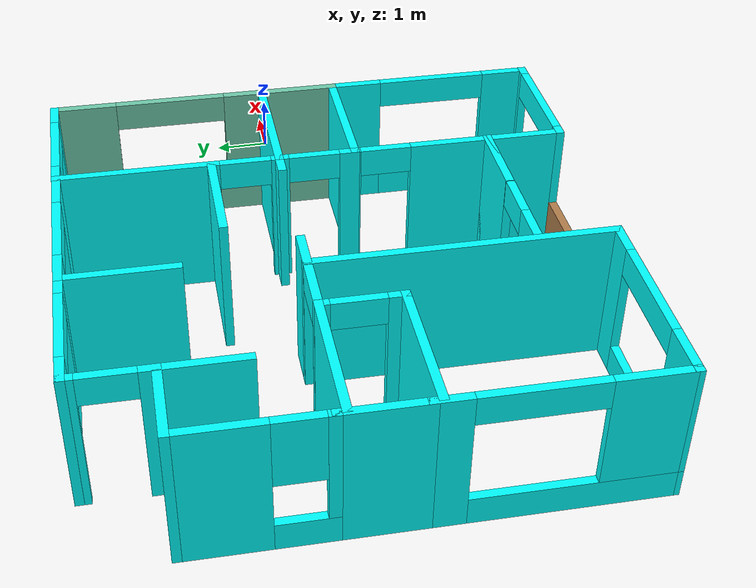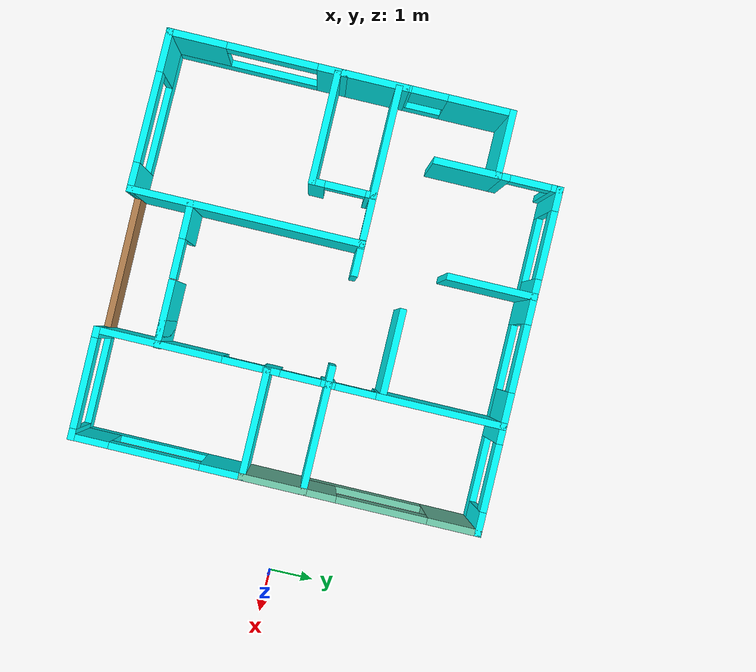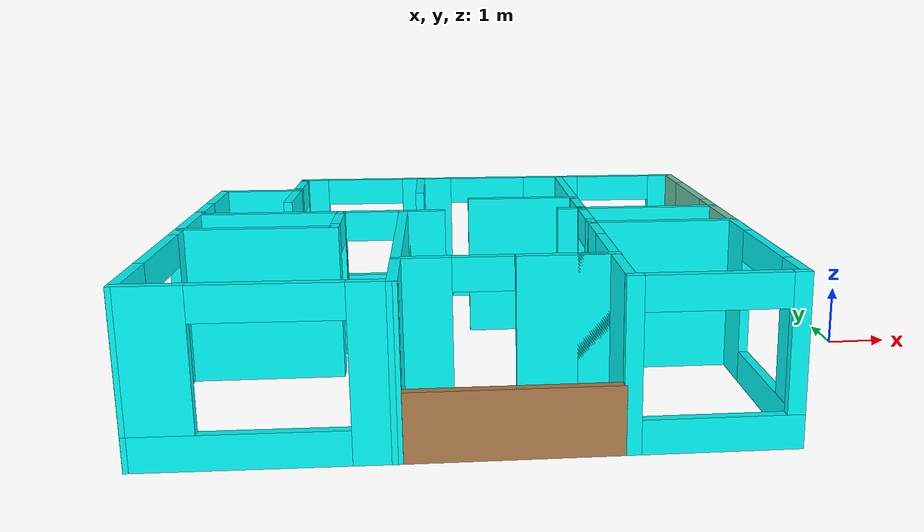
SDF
<?xml version='1.0'?>
<sdf version='1.6'>
  <model name='Building'>
    <pose frame=''>-6.64793 -0.330614 0 0 -0 0</pose>
    <link name='Wall_101'>
      <collision name='Wall_101_Collision'>
        <geometry>
          <box>
            <size>2.5 0.15 2.5</size>
          </box>
        </geometry>
        <pose frame=''>0 0 1.25 0 -0 0</pose>
      </collision>
      <visual name='Wall_101_Visual'>
        <pose frame=''>0 0 1.25 0 -0 0</pose>
        <geometry>
          <box>
            <size>2.5 0.15 2.5</size>
          </box>
        </geometry>
        <material>
          <script>
            <uri>file://media/materials/scripts/gazebo.material</uri>
            <name>Gazebo/Grey</name>
          </script>
          <ambient>0 1 1 1</ambient>
        </material>
        <meta>
          <layer>0</layer>
        </meta>
      </visual>
      <pose frame=''>-3.22857 0.625381 0 0 -0 3.14159</pose>
    </link>
    <link name='Wall_103'>
      <pose frame=''>-1.5069 0.625381 0 0 -0 0</pose>
      <visual name='Wall_103_Visual_0'>
        <pose frame=''>-0.545502 0 1.25 0 -0 0</pose>
        <geometry>
          <box>
            <size>0.152336 0.15 2.5</size>
          </box>
        </geometry>
        <material>
          <script>
            <uri>file://media/materials/scripts/gazebo.material</uri>
            <name>Gazebo/Grey</name>
          </script>
          <ambient>0 1 1 1</ambient>
        </material>
        <meta>
          <layer>0</layer>
        </meta>
      </visual>
      <collision name='Wall_103_Collision_0'>
        <geometry>
          <box>
            <size>0.152336 0.15 2.5</size>
          </box>
        </geometry>
        <pose frame=''>-0.545502 0 1.25 0 -0 0</pose>
      </collision>
      <visual name='Wall_103_Visual_1'>
        <pose frame=''>0.526168 0 1.25 0 -0 0</pose>
        <geometry>
          <box>
            <size>0.191004 0.15 2.5</size>
          </box>
        </geometry>
        <material>
          <script>
            <uri>file://media/materials/scripts/gazebo.material</uri>
            <name>Gazebo/Grey</name>
          </script>
          <ambient>0 1 1 1</ambient>
        </material>
        <meta>
          <layer>0</layer>
        </meta>
      </visual>
      <collision name='Wall_103_Collision_1'>
        <geometry>
          <box>
            <size>0.191004 0.15 2.5</size>
          </box>
        </geometry>
        <pose frame=''>0.526168 0 1.25 0 -0 0</pose>
      </collision>
      <visual name='Wall_103_Visual_2'>
        <pose frame=''>-0.019334 0 2.25 0 -0 0</pose>
        <geometry>
          <box>
            <size>0.9 0.15 0.5</size>
          </box>
        </geometry>
        <material>
          <script>
            <uri>file://media/materials/scripts/gazebo.material</uri>
            <name>Gazebo/Grey</name>
          </script>
          <ambient>0 1 1 1</ambient>
        </material>
        <meta>
          <layer>0</layer>
        </meta>
      </visual>
      <collision name='Wall_103_Collision_2'>
        <geometry>
          <box>
            <size>0.9 0.15 0.5</size>
          </box>
        </geometry>
        <pose frame=''>-0.019334 0 2.25 0 -0 0</pose>
      </collision>
    </link>
    <link name='Wall_105'>
      <collision name='Wall_105_Collision'>
        <geometry>
          <box>
            <size>0.75666 0.15 2.5</size>
          </box>
        </geometry>
        <pose frame=''>0 0 1.25 0 -0 0</pose>
      </collision>
      <visual name='Wall_105_Visual'>
        <pose frame=''>0 0 1.25 0 -0 0</pose>
        <geometry>
          <box>
            <size>0.75666 0.15 2.5</size>
          </box>
        </geometry>
        <material>
          <script>
            <uri>file://media/materials/scripts/gazebo.material</uri>
            <name>Gazebo/Grey</name>
          </script>
          <ambient>0 1 1 1</ambient>
        </material>
        <meta>
          <layer>0</layer>
        </meta>
      </visual>
      <pose frame=''>-0.656896 0.625381 0 0 -0 0</pose>
    </link>
    <link name='Wall_108'>
      <collision name='Wall_108_Collision'>
        <geometry>
          <box>
            <size>5.25 0.15 2.5</size>
          </box>
        </geometry>
        <pose frame=''>0 0 1.25 0 -0 0</pose>
      </collision>
      <visual name='Wall_108_Visual'>
        <pose frame=''>0 0 1.25 0 -0 0</pose>
        <geometry>
          <box>
            <size>5.25 0.15 2.5</size>
          </box>
        </geometry>
        <material>
          <script>
            <uri>file://media/materials/scripts/gazebo.material</uri>
            <name>Gazebo/Grey</name>
          </script>
          <ambient>0 1 1 1</ambient>
        </material>
        <meta>
          <layer>0</layer>
        </meta>
      </visual>
      <pose frame=''>-0.990859 -1.9245 0 0 0 -1.57088</pose>
    </link>
    <link name='Wall_112'>
      <pose frame=''>2.10727 -2.52462 0 0 0 -1.5708</pose>
      <visual name='Wall_112_Visual_0'>
        <pose frame=''>-1.78805 0 1.25 0 -0 0</pose>
        <geometry>
          <box>
            <size>0.173908 0.15 2.5</size>
          </box>
        </geometry>
        <material>
          <script>
            <uri>file://media/materials/scripts/gazebo.material</uri>
            <name>Gazebo/Grey</name>
          </script>
          <ambient>0 1 1 1</ambient>
        </material>
        <meta>
          <layer>0</layer>
        </meta>
      </visual>
      <collision name='Wall_112_Collision_0'>
        <geometry>
          <box>
            <size>0.173908 0.15 2.5</size>
          </box>
        </geometry>
        <pose frame=''>-1.78805 0 1.25 0 -0 0</pose>
      </collision>
      <visual name='Wall_112_Visual_1'>
        <pose frame=''>0.536954 0 1.25 0 -0 0</pose>
        <geometry>
          <box>
            <size>2.67609 0.15 2.5</size>
          </box>
        </geometry>
        <material>
          <script>
            <uri>file://media/materials/scripts/gazebo.material</uri>
            <name>Gazebo/Grey</name>
          </script>
          <ambient>0 1 1 1</ambient>
        </material>
        <meta>
          <layer>0</layer>
        </meta>
      </visual>
      <collision name='Wall_112_Collision_1'>
        <geometry>
          <box>
            <size>2.67609 0.15 2.5</size>
          </box>
        </geometry>
        <pose frame=''>0.536954 0 1.25 0 -0 0</pose>
      </collision>
      <visual name='Wall_112_Visual_2'>
        <pose frame=''>-1.25109 0 2.25 0 -0 0</pose>
        <geometry>
          <box>
            <size>0.9 0.15 0.5</size>
          </box>
        </geometry>
        <material>
          <script>
            <uri>file://media/materials/scripts/gazebo.material</uri>
            <name>Gazebo/Grey</name>
          </script>
          <ambient>0 1 1 1</ambient>
        </material>
        <meta>
          <layer>0</layer>
        </meta>
      </visual>
      <collision name='Wall_112_Collision_2'>
        <geometry>
          <box>
            <size>0.9 0.15 0.5</size>
          </box>
        </geometry>
        <pose frame=''>-1.25109 0 2.25 0 -0 0</pose>
      </collision>
    </link>
    <link name='Wall_114'>
      <pose frame=''>0.571285 -3.1442 0 0 -0 0</pose>
      <visual name='Wall_114_Visual_0'>
        <pose frame=''>-1.20415 0 1.25 0 -0 0</pose>
        <geometry>
          <box>
            <size>0.8417 0.15 2.5</size>
          </box>
        </geometry>
        <material>
          <script>
            <uri>file://media/materials/scripts/gazebo.material</uri>
            <name>Gazebo/Grey</name>
          </script>
          <ambient>0 1 1 1</ambient>
        </material>
        <meta>
          <layer>0</layer>
        </meta>
      </visual>
      <collision name='Wall_114_Collision_0'>
        <geometry>
          <box>
            <size>0.8417 0.15 2.5</size>
          </box>
        </geometry>
        <pose frame=''>-1.20415 0 1.25 0 -0 0</pose>
      </collision>
      <visual name='Wall_114_Visual_1'>
        <pose frame=''>0.87085 0 1.25 0 -0 0</pose>
        <geometry>
          <box>
            <size>1.5083 0.15 2.5</size>
          </box>
        </geometry>
        <material>
          <script>
            <uri>file://media/materials/scripts/gazebo.material</uri>
            <name>Gazebo/Grey</name>
          </script>
          <ambient>0 1 1 1</ambient>
        </material>
        <meta>
          <layer>0</layer>
        </meta>
      </visual>
      <collision name='Wall_114_Collision_1'>
        <geometry>
          <box>
            <size>1.5083 0.15 2.5</size>
          </box>
        </geometry>
        <pose frame=''>0.87085 0 1.25 0 -0 0</pose>
      </collision>
      <visual name='Wall_114_Visual_2'>
        <pose frame=''>1.3119 0 1.25 0 -0 0</pose>
        <geometry>
          <box>
            <size>0.626192 0.15 2.5</size>
          </box>
        </geometry>
        <material>
          <script>
            <uri>file://media/materials/scripts/gazebo.material</uri>
            <name>Gazebo/Grey</name>
          </script>
          <ambient>0 1 1 1</ambient>
        </material>
        <meta>
          <layer>0</layer>
        </meta>
      </visual>
      <collision name='Wall_114_Collision_2'>
        <geometry>
          <box>
            <size>0.626192 0.15 2.5</size>
          </box>
        </geometry>
        <pose frame=''>1.3119 0 1.25 0 -0 0</pose>
      </collision>
      <visual name='Wall_114_Visual_3'>
        <pose frame=''>-0.342246 0 2.25 0 -0 0</pose>
        <geometry>
          <box>
            <size>0.882108 0.15 0.5</size>
          </box>
        </geometry>
        <material>
          <script>
            <uri>file://media/materials/scripts/gazebo.material</uri>
            <name>Gazebo/Grey</name>
          </script>
          <ambient>0 1 1 1</ambient>
        </material>
        <meta>
          <layer>0</layer>
        </meta>
      </visual>
      <collision name='Wall_114_Collision_3'>
        <geometry>
          <box>
            <size>0.882108 0.15 0.5</size>
          </box>
        </geometry>
        <pose frame=''>-0.342246 0 2.25 0 -0 0</pose>
      </collision>
    </link>
    <link name='Wall_118'>
      <collision name='Wall_118_Collision'>
        <geometry>
          <box>
            <size>3.25 0.15 1</size>
          </box>
        </geometry>
        <pose frame=''>0 0 0.5 0 -0 0</pose>
      </collision>
      <visual name='Wall_118_Visual'>
        <pose frame=''>0 0 0.5 0 -0 0</pose>
        <geometry>
          <box>
            <size>3.25 0.15 1</size>
          </box>
        </geometry>
        <material>
          <script>
            <uri>file://media/materials/scripts/gazebo.material</uri>
            <name>Gazebo/Wood</name>
          </script>
          <ambient>0 1 1 1</ambient>
        </material>
        <meta>
          <layer>0</layer>
        </meta>
      </visual>
      <pose frame=''>0.558926 -4.47438 0 0 -0 0</pose>
    </link>
    <link name='Wall_119'>
      <pose frame=''>3.28414 -4.4745 0 0 0 -9.9e-05</pose>
      <visual name='Wall_119_Visual_0'>
        <pose frame=''>-1.1272 0 1.25 0 -0 0</pose>
        <geometry>
          <box>
            <size>0.245591 0.15 2.5</size>
          </box>
        </geometry>
        <material>
          <script>
            <uri>file://media/materials/scripts/gazebo.material</uri>
            <name>Gazebo/Grey</name>
          </script>
          <ambient>0 1 1 1</ambient>
        </material>
        <meta>
          <layer>0</layer>
        </meta>
      </visual>
      <collision name='Wall_119_Collision_0'>
        <geometry>
          <box>
            <size>0.245591 0.15 2.5</size>
          </box>
        </geometry>
        <pose frame=''>-1.1272 0 1.25 0 -0 0</pose>
      </collision>
      <visual name='Wall_119_Visual_1'>
        <pose frame=''>0.122796 0 0.25 0 -0 0</pose>
        <geometry>
          <box>
            <size>2.25441 0.15 0.5</size>
          </box>
        </geometry>
        <material>
          <script>
            <uri>file://media/materials/scripts/gazebo.material</uri>
            <name>Gazebo/Grey</name>
          </script>
          <ambient>0 1 1 1</ambient>
        </material>
        <meta>
          <layer>0</layer>
        </meta>
      </visual>
      <collision name='Wall_119_Collision_1'>
        <geometry>
          <box>
            <size>2.25441 0.15 0.5</size>
          </box>
        </geometry>
        <pose frame=''>0.122796 0 0.25 0 -0 0</pose>
      </collision>
      <visual name='Wall_119_Visual_2'>
        <pose frame=''>1.1228 0 1.5 0 -0 0</pose>
        <geometry>
          <box>
            <size>0.254409 0.15 2</size>
          </box>
        </geometry>
        <material>
          <script>
            <uri>file://media/materials/scripts/gazebo.material</uri>
            <name>Gazebo/Grey</name>
          </script>
          <ambient>0 1 1 1</ambient>
        </material>
        <meta>
          <layer>0</layer>
        </meta>
      </visual>
      <collision name='Wall_119_Collision_2'>
        <geometry>
          <box>
            <size>0.254409 0.15 2</size>
          </box>
        </geometry>
        <pose frame=''>1.1228 0 1.5 0 -0 0</pose>
      </collision>
      <visual name='Wall_119_Visual_3'>
        <pose frame=''>-0.004409 0 2.25 0 -0 0</pose>
        <geometry>
          <box>
            <size>2 0.15 0.5</size>
          </box>
        </geometry>
        <material>
          <script>
            <uri>file://media/materials/scripts/gazebo.material</uri>
            <name>Gazebo/Grey</name>
          </script>
          <ambient>0 1 1 1</ambient>
        </material>
        <meta>
          <layer>0</layer>
        </meta>
      </visual>
      <collision name='Wall_119_Collision_3'>
        <geometry>
          <box>
            <size>2 0.15 0.5</size>
          </box>
        </geometry>
        <pose frame=''>-0.004409 0 2.25 0 -0 0</pose>
      </collision>
    </link>
    <link name='Wall_121'>
      <pose frame=''>-2.72451 -4.45129 0 0 -0 3.12827</pose>
      <visual name='Wall_121_Visual_0'>
        <pose frame=''>-1.47874 0 1.25 0 -0 0</pose>
        <geometry>
          <box>
            <size>0.660134 0.15 2.5</size>
          </box>
        </geometry>
        <material>
          <script>
            <uri>file://media/materials/scripts/gazebo.material</uri>
            <name>Gazebo/Grey</name>
          </script>
          <ambient>0 1 1 1</ambient>
        </material>
        <meta>
          <layer>0</layer>
        </meta>
      </visual>
      <collision name='Wall_121_Collision_0'>
        <geometry>
          <box>
            <size>0.660134 0.15 2.5</size>
          </box>
        </geometry>
        <pose frame=''>-1.47874 0 1.25 0 -0 0</pose>
      </collision>
      <visual name='Wall_121_Visual_1'>
        <pose frame=''>0.330067 0 0.25 0 -0 0</pose>
        <geometry>
          <box>
            <size>2.95747 0.15 0.5</size>
          </box>
        </geometry>
        <material>
          <script>
            <uri>file://media/materials/scripts/gazebo.material</uri>
            <name>Gazebo/Grey</name>
          </script>
          <ambient>0 1 1 1</ambient>
        </material>
        <meta>
          <layer>0</layer>
        </meta>
      </visual>
      <collision name='Wall_121_Collision_1'>
        <geometry>
          <box>
            <size>2.95747 0.15 0.5</size>
          </box>
        </geometry>
        <pose frame=''>0.330067 0 0.25 0 -0 0</pose>
      </collision>
      <visual name='Wall_121_Visual_2'>
        <pose frame=''>1.33007 0 1.5 0 -0 0</pose>
        <geometry>
          <box>
            <size>0.957473 0.15 2</size>
          </box>
        </geometry>
        <material>
          <script>
            <uri>file://media/materials/scripts/gazebo.material</uri>
            <name>Gazebo/Grey</name>
          </script>
          <ambient>0 1 1 1</ambient>
        </material>
        <meta>
          <layer>0</layer>
        </meta>
      </visual>
      <collision name='Wall_121_Collision_2'>
        <geometry>
          <box>
            <size>0.957473 0.15 2</size>
          </box>
        </geometry>
        <pose frame=''>1.33007 0 1.5 0 -0 0</pose>
      </collision>
      <visual name='Wall_121_Visual_3'>
        <pose frame=''>-0.148669 0 2.25 0 -0 0</pose>
        <geometry>
          <box>
            <size>2 0.15 0.5</size>
          </box>
        </geometry>
        <material>
          <script>
            <uri>file://media/materials/scripts/gazebo.material</uri>
            <name>Gazebo/Grey</name>
          </script>
          <ambient>0 1 1 1</ambient>
        </material>
        <meta>
          <layer>0</layer>
        </meta>
      </visual>
      <collision name='Wall_121_Collision_3'>
        <geometry>
          <box>
            <size>2 0.15 0.5</size>
          </box>
        </geometry>
        <pose frame=''>-0.148669 0 2.25 0 -0 0</pose>
      </collision>
    </link>
    <link name='Wall_47'>
      <pose frame=''>-1.91773 4.47538 0 0 -0 0</pose>
      <visual name='Wall_47_Visual_0'>
        <pose frame=''>-0.97915 0 1.25 0 -0 0</pose>
        <geometry>
          <box>
            <size>0.541699 0.15 2.5</size>
          </box>
        </geometry>
        <material>
          <script>
            <uri>file://media/materials/scripts/gazebo.material</uri>
            <name>Gazebo/Grey</name>
          </script>
          <ambient>0 1 1 1</ambient>
        </material>
        <meta>
          <layer>0</layer>
        </meta>
      </visual>
      <collision name='Wall_47_Collision_0'>
        <geometry>
          <box>
            <size>0.541699 0.15 2.5</size>
          </box>
        </geometry>
        <pose frame=''>-0.97915 0 1.25 0 -0 0</pose>
      </collision>
      <visual name='Wall_47_Visual_1'>
        <pose frame=''>0.27085 0 0.25 0 -0 0</pose>
        <geometry>
          <box>
            <size>1.9583 0.15 0.5</size>
          </box>
        </geometry>
        <material>
          <script>
            <uri>file://media/materials/scripts/gazebo.material</uri>
            <name>Gazebo/Grey</name>
          </script>
          <ambient>0 1 1 1</ambient>
        </material>
        <meta>
          <layer>0</layer>
        </meta>
      </visual>
      <collision name='Wall_47_Collision_1'>
        <geometry>
          <box>
            <size>1.9583 0.15 0.5</size>
          </box>
        </geometry>
        <pose frame=''>0.27085 0 0.25 0 -0 0</pose>
      </collision>
      <visual name='Wall_47_Visual_2'>
        <pose frame=''>1.02085 0 1.5 0 -0 0</pose>
        <geometry>
          <box>
            <size>0.458301 0.15 2</size>
          </box>
        </geometry>
        <material>
          <script>
            <uri>file://media/materials/scripts/gazebo.material</uri>
            <name>Gazebo/Grey</name>
          </script>
          <ambient>0 1 1 1</ambient>
        </material>
        <meta>
          <layer>0</layer>
        </meta>
      </visual>
      <collision name='Wall_47_Collision_2'>
        <geometry>
          <box>
            <size>0.458301 0.15 2</size>
          </box>
        </geometry>
        <pose frame=''>1.02085 0 1.5 0 -0 0</pose>
      </collision>
      <visual name='Wall_47_Visual_3'>
        <pose frame=''>0.041699 0 2.25 0 -0 0</pose>
        <geometry>
          <box>
            <size>1.5 0.15 0.5</size>
          </box>
        </geometry>
        <material>
          <script>
            <uri>file://media/materials/scripts/gazebo.material</uri>
            <name>Gazebo/Grey</name>
          </script>
          <ambient>0 1 1 1</ambient>
        </material>
        <meta>
          <layer>0</layer>
        </meta>
      </visual>
      <collision name='Wall_47_Collision_3'>
        <geometry>
          <box>
            <size>1.5 0.15 0.5</size>
          </box>
        </geometry>
        <pose frame=''>0.041699 0 2.25 0 -0 0</pose>
      </collision>
    </link>
    <link name='Wall_48'>
      <pose frame=''>0.682269 4.47538 0 0 -0 0</pose>
      <visual name='Wall_48_Visual_0'>
        <pose frame=''>-1.15703 0 1.25 0 -0 0</pose>
        <geometry>
          <box>
            <size>0.685935 0.15 2.5</size>
          </box>
        </geometry>
        <material>
          <script>
            <uri>file://media/materials/scripts/gazebo.material</uri>
            <name>Gazebo/Grey</name>
          </script>
          <ambient>0 1 1 1</ambient>
        </material>
        <meta>
          <layer>0</layer>
        </meta>
      </visual>
      <collision name='Wall_48_Collision_0'>
        <geometry>
          <box>
            <size>0.685935 0.15 2.5</size>
          </box>
        </geometry>
        <pose frame=''>-1.15703 0 1.25 0 -0 0</pose>
      </collision>
      <visual name='Wall_48_Visual_1'>
        <pose frame=''>0.342968 0 0.25 0 -0 0</pose>
        <geometry>
          <box>
            <size>2.31406 0.15 0.5</size>
          </box>
        </geometry>
        <material>
          <script>
            <uri>file://media/materials/scripts/gazebo.material</uri>
            <name>Gazebo/Grey</name>
          </script>
          <ambient>0 1 1 1</ambient>
        </material>
        <meta>
          <layer>0</layer>
        </meta>
      </visual>
      <collision name='Wall_48_Collision_1'>
        <geometry>
          <box>
            <size>2.31406 0.15 0.5</size>
          </box>
        </geometry>
        <pose frame=''>0.342968 0 0.25 0 -0 0</pose>
      </collision>
      <visual name='Wall_48_Visual_2'>
        <pose frame=''>1.09297 0 1.5 0 -0 0</pose>
        <geometry>
          <box>
            <size>0.814065 0.15 2</size>
          </box>
        </geometry>
        <material>
          <script>
            <uri>file://media/materials/scripts/gazebo.material</uri>
            <name>Gazebo/Grey</name>
          </script>
          <ambient>0 1 1 1</ambient>
        </material>
        <meta>
          <layer>0</layer>
        </meta>
      </visual>
      <collision name='Wall_48_Collision_2'>
        <geometry>
          <box>
            <size>0.814065 0.15 2</size>
          </box>
        </geometry>
        <pose frame=''>1.09297 0 1.5 0 -0 0</pose>
      </collision>
      <visual name='Wall_48_Visual_3'>
        <pose frame=''>-0.064065 0 2.25 0 -0 0</pose>
        <geometry>
          <box>
            <size>1.5 0.15 0.5</size>
          </box>
        </geometry>
        <material>
          <script>
            <uri>file://media/materials/scripts/gazebo.material</uri>
            <name>Gazebo/Grey</name>
          </script>
          <ambient>0 1 1 1</ambient>
        </material>
        <meta>
          <layer>0</layer>
        </meta>
      </visual>
      <collision name='Wall_48_Collision_3'>
        <geometry>
          <box>
            <size>1.5 0.15 0.5</size>
          </box>
        </geometry>
        <pose frame=''>-0.064065 0 2.25 0 -0 0</pose>
      </collision>
    </link>
    <link name='Wall_49'>
      <pose frame=''>3.28227 4.47538 0 0 -0 0</pose>
      <visual name='Wall_49_Visual_0'>
        <pose frame=''>-1.01648 0 1.25 0 -0 0</pose>
        <geometry>
          <box>
            <size>0.467049 0.15 2.5</size>
          </box>
        </geometry>
        <material>
          <script>
            <uri>file://media/materials/scripts/gazebo.material</uri>
            <name>Gazebo/Grey</name>
          </script>
          <ambient>0 1 1 1</ambient>
        </material>
        <meta>
          <layer>0</layer>
        </meta>
      </visual>
      <collision name='Wall_49_Collision_0'>
        <geometry>
          <box>
            <size>0.467049 0.15 2.5</size>
          </box>
        </geometry>
        <pose frame=''>-1.01648 0 1.25 0 -0 0</pose>
      </collision>
      <visual name='Wall_49_Visual_1'>
        <pose frame=''>0.233524 0 0.25 0 -0 0</pose>
        <geometry>
          <box>
            <size>2.03295 0.15 0.5</size>
          </box>
        </geometry>
        <material>
          <script>
            <uri>file://media/materials/scripts/gazebo.material</uri>
            <name>Gazebo/Grey</name>
          </script>
          <ambient>0 1 1 1</ambient>
        </material>
        <meta>
          <layer>0</layer>
        </meta>
      </visual>
      <collision name='Wall_49_Collision_1'>
        <geometry>
          <box>
            <size>2.03295 0.15 0.5</size>
          </box>
        </geometry>
        <pose frame=''>0.233524 0 0.25 0 -0 0</pose>
      </collision>
      <visual name='Wall_49_Visual_2'>
        <pose frame=''>0.983524 0 1.5 0 -0 0</pose>
        <geometry>
          <box>
            <size>0.532951 0.15 2</size>
          </box>
        </geometry>
        <material>
          <script>
            <uri>file://media/materials/scripts/gazebo.material</uri>
            <name>Gazebo/Grey</name>
          </script>
          <ambient>0 1 1 1</ambient>
        </material>
        <meta>
          <layer>0</layer>
        </meta>
      </visual>
      <collision name='Wall_49_Collision_2'>
        <geometry>
          <box>
            <size>0.532951 0.15 2</size>
          </box>
        </geometry>
        <pose frame=''>0.983524 0 1.5 0 -0 0</pose>
      </collision>
      <visual name='Wall_49_Visual_3'>
        <pose frame=''>-0.032951 0 2.25 0 -0 0</pose>
        <geometry>
          <box>
            <size>1.5 0.15 0.5</size>
          </box>
        </geometry>
        <material>
          <script>
            <uri>file://media/materials/scripts/gazebo.material</uri>
            <name>Gazebo/Grey</name>
          </script>
          <ambient>0 1 1 1</ambient>
        </material>
        <meta>
          <layer>0</layer>
        </meta>
      </visual>
      <collision name='Wall_49_Collision_3'>
        <geometry>
          <box>
            <size>1.5 0.15 0.5</size>
          </box>
        </geometry>
        <pose frame=''>-0.032951 0 2.25 0 -0 0</pose>
      </collision>
    </link>
    <link name='Wall_50'>
      <pose frame=''>4.45727 2.55038 0 0 0 -1.5708</pose>
      <visual name='Wall_50_Visual_0'>
        <pose frame=''>-1.39789 0 1.25 0 -0 0</pose>
        <geometry>
          <box>
            <size>1.20423 0.15 2.5</size>
          </box>
        </geometry>
        <material>
          <script>
            <uri>file://media/materials/scripts/gazebo.material</uri>
            <name>Gazebo/Grey</name>
          </script>
          <ambient>0.435294 0.796078 0.67451 1</ambient>
        </material>
        <meta>
          <layer>0</layer>
        </meta>
      </visual>
      <collision name='Wall_50_Collision_0'>
        <geometry>
          <box>
            <size>1.20423 0.15 2.5</size>
          </box>
        </geometry>
        <pose frame=''>-1.39789 0 1.25 0 -0 0</pose>
      </collision>
      <visual name='Wall_50_Visual_1'>
        <pose frame=''>0.602112 0 0.25 0 -0 0</pose>
        <geometry>
          <box>
            <size>2.79577 0.15 0.5</size>
          </box>
        </geometry>
        <material>
          <script>
            <uri>file://media/materials/scripts/gazebo.material</uri>
            <name>Gazebo/Grey</name>
          </script>
          <ambient>0.435294 0.796078 0.67451 1</ambient>
        </material>
        <meta>
          <layer>0</layer>
        </meta>
      </visual>
      <collision name='Wall_50_Collision_1'>
        <geometry>
          <box>
            <size>2.79577 0.15 0.5</size>
          </box>
        </geometry>
        <pose frame=''>0.602112 0 0.25 0 -0 0</pose>
      </collision>
      <visual name='Wall_50_Visual_2'>
        <pose frame=''>1.60211 0 1.5 0 -0 0</pose>
        <geometry>
          <box>
            <size>0.795775 0.15 2</size>
          </box>
        </geometry>
        <material>
          <script>
            <uri>file://media/materials/scripts/gazebo.material</uri>
            <name>Gazebo/Grey</name>
          </script>
          <ambient>0.435294 0.796078 0.67451 1</ambient>
        </material>
        <meta>
          <layer>0</layer>
        </meta>
      </visual>
      <collision name='Wall_50_Collision_2'>
        <geometry>
          <box>
            <size>0.795775 0.15 2</size>
          </box>
        </geometry>
        <pose frame=''>1.60211 0 1.5 0 -0 0</pose>
      </collision>
      <visual name='Wall_50_Visual_3'>
        <pose frame=''>0.204225 0 2.25 0 -0 0</pose>
        <geometry>
          <box>
            <size>2 0.15 0.5</size>
          </box>
        </geometry>
        <material>
          <script>
            <uri>file://media/materials/scripts/gazebo.material</uri>
            <name>Gazebo/Grey</name>
          </script>
          <ambient>0.435294 0.796078 0.67451 1</ambient>
        </material>
        <meta>
          <layer>0</layer>
        </meta>
      </visual>
      <collision name='Wall_50_Collision_3'>
        <geometry>
          <box>
            <size>2 0.15 0.5</size>
          </box>
        </geometry>
        <pose frame=''>0.204225 0 2.25 0 -0 0</pose>
      </collision>
    </link>
    <link name='Wall_55'>
      <pose frame=''>-3.09273 3.80038 0 0 0 -1.5708</pose>
      <visual name='Wall_55_Visual_0'>
        <pose frame=''>-0.618116 0 1.25 0 -0 0</pose>
        <geometry>
          <box>
            <size>0.263768 0.15 2.5</size>
          </box>
        </geometry>
        <material>
          <script>
            <uri>file://media/materials/scripts/gazebo.material</uri>
            <name>Gazebo/Grey</name>
          </script>
          <ambient>0 1 1 1</ambient>
        </material>
        <meta>
          <layer>0</layer>
        </meta>
      </visual>
      <collision name='Wall_55_Collision_0'>
        <geometry>
          <box>
            <size>0.263768 0.15 2.5</size>
          </box>
        </geometry>
        <pose frame=''>-0.618116 0 1.25 0 -0 0</pose>
      </collision>
      <visual name='Wall_55_Visual_1'>
        <pose frame=''>0.581884 0 1.25 0 -0 0</pose>
        <geometry>
          <box>
            <size>0.336232 0.15 2.5</size>
          </box>
        </geometry>
        <material>
          <script>
            <uri>file://media/materials/scripts/gazebo.material</uri>
            <name>Gazebo/Grey</name>
          </script>
          <ambient>0 1 1 1</ambient>
        </material>
        <meta>
          <layer>0</layer>
        </meta>
      </visual>
      <collision name='Wall_55_Collision_1'>
        <geometry>
          <box>
            <size>0.336232 0.15 2.5</size>
          </box>
        </geometry>
        <pose frame=''>0.581884 0 1.25 0 -0 0</pose>
      </collision>
      <visual name='Wall_55_Visual_2'>
        <pose frame=''>-0.036232 0 2.25 0 -0 0</pose>
        <geometry>
          <box>
            <size>0.9 0.15 0.5</size>
          </box>
        </geometry>
        <material>
          <script>
            <uri>file://media/materials/scripts/gazebo.material</uri>
            <name>Gazebo/Grey</name>
          </script>
          <ambient>0 1 1 1</ambient>
        </material>
        <meta>
          <layer>0</layer>
        </meta>
      </visual>
      <collision name='Wall_55_Collision_2'>
        <geometry>
          <box>
            <size>0.9 0.15 0.5</size>
          </box>
        </geometry>
        <pose frame=''>-0.036232 0 2.25 0 -0 0</pose>
      </collision>
    </link>
    <link name='Wall_56'>
      <collision name='Wall_56_Collision'>
        <geometry>
          <box>
            <size>1.5 0.15 2.5</size>
          </box>
        </geometry>
        <pose frame=''>0 0 1.25 0 -0 0</pose>
      </collision>
      <visual name='Wall_56_Visual'>
        <pose frame=''>0 0 1.25 0 -0 0</pose>
        <geometry>
          <box>
            <size>1.5 0.15 2.5</size>
          </box>
        </geometry>
        <material>
          <script>
            <uri>file://media/materials/scripts/gazebo.material</uri>
            <name>Gazebo/Grey</name>
          </script>
          <ambient>0 1 1 1</ambient>
        </material>
        <meta>
          <layer>0</layer>
        </meta>
      </visual>
      <pose frame=''>-3.09273 2.45038 0 0 0 -1.5708</pose>
    </link>
    <link name='Wall_58'>
      <collision name='Wall_58_Collision'>
        <geometry>
          <box>
            <size>1.5 0.15 2.5</size>
          </box>
        </geometry>
        <pose frame=''>0 0 1.25 0 -0 0</pose>
      </collision>
      <visual name='Wall_58_Visual'>
        <pose frame=''>0 0 1.25 0 -0 0</pose>
        <geometry>
          <box>
            <size>1.5 0.15 2.5</size>
          </box>
        </geometry>
        <material>
          <script>
            <uri>file://media/materials/scripts/gazebo.material</uri>
            <name>Gazebo/Grey</name>
          </script>
          <ambient>0 1 1 1</ambient>
        </material>
        <meta>
          <layer>0</layer>
        </meta>
      </visual>
      <pose frame=''>-3.78294 3.1218 0 0 -0 3.14159</pose>
    </link>
    <link name='Wall_60'>
      <pose frame=''>-4.45794 1.9468 0 0 0 -1.5708</pose>
      <visual name='Wall_60_Visual_0'>
        <pose frame=''>-0.499975 0 1.25 0 -0 0</pose>
        <geometry>
          <box>
            <size>1.50005 0.15 2.5</size>
          </box>
        </geometry>
        <material>
          <script>
            <uri>file://media/materials/scripts/gazebo.material</uri>
            <name>Gazebo/Grey</name>
          </script>
          <ambient>0 1 1 1</ambient>
        </material>
        <meta>
          <layer>0</layer>
        </meta>
      </visual>
      <collision name='Wall_60_Collision_0'>
        <geometry>
          <box>
            <size>1.50005 0.15 2.5</size>
          </box>
        </geometry>
        <pose frame=''>-0.499975 0 1.25 0 -0 0</pose>
      </collision>
      <visual name='Wall_60_Visual_1'>
        <pose frame=''>0.750025 0 0.25 0 -0 0</pose>
        <geometry>
          <box>
            <size>0.99995 0.15 0.5</size>
          </box>
        </geometry>
        <material>
          <script>
            <uri>file://media/materials/scripts/gazebo.material</uri>
            <name>Gazebo/Grey</name>
          </script>
          <ambient>0 1 1 1</ambient>
        </material>
        <meta>
          <layer>0</layer>
        </meta>
      </visual>
      <collision name='Wall_60_Collision_1'>
        <geometry>
          <box>
            <size>0.99995 0.15 0.5</size>
          </box>
        </geometry>
        <pose frame=''>0.750025 0 0.25 0 -0 0</pose>
      </collision>
      <visual name='Wall_60_Visual_2'>
        <pose frame=''>1.15003 0 1.5 0 -0 0</pose>
        <geometry>
          <box>
            <size>0.19995 0.15 2</size>
          </box>
        </geometry>
        <material>
          <script>
            <uri>file://media/materials/scripts/gazebo.material</uri>
            <name>Gazebo/Grey</name>
          </script>
          <ambient>0 1 1 1</ambient>
        </material>
        <meta>
          <layer>0</layer>
        </meta>
      </visual>
      <collision name='Wall_60_Collision_2'>
        <geometry>
          <box>
            <size>0.19995 0.15 2</size>
          </box>
        </geometry>
        <pose frame=''>1.15003 0 1.5 0 -0 0</pose>
      </collision>
      <visual name='Wall_60_Visual_3'>
        <pose frame=''>0.65005 0 1.9 0 -0 0</pose>
        <geometry>
          <box>
            <size>0.8 0.15 1.2</size>
          </box>
        </geometry>
        <material>
          <script>
            <uri>file://media/materials/scripts/gazebo.material</uri>
            <name>Gazebo/Grey</name>
          </script>
          <ambient>0 1 1 1</ambient>
        </material>
        <meta>
          <layer>0</layer>
        </meta>
      </visual>
      <collision name='Wall_60_Collision_3'>
        <geometry>
          <box>
            <size>0.8 0.15 1.2</size>
          </box>
        </geometry>
        <pose frame=''>0.65005 0 1.9 0 -0 0</pose>
      </collision>
    </link>
    <link name='Wall_61'>
      <collision name='Wall_61_Collision'>
        <geometry>
          <box>
            <size>1.5 0.15 2.5</size>
          </box>
        </geometry>
        <pose frame=''>0 0 1.25 0 -0 0</pose>
      </collision>
      <visual name='Wall_61_Visual'>
        <pose frame=''>0 0 1.25 0 -0 0</pose>
        <geometry>
          <box>
            <size>1.5 0.15 2.5</size>
          </box>
        </geometry>
        <material>
          <script>
            <uri>file://media/materials/scripts/gazebo.material</uri>
            <name>Gazebo/Grey</name>
          </script>
          <ambient>0 1 1 1</ambient>
        </material>
        <meta>
          <layer>0</layer>
        </meta>
      </visual>
      <pose frame=''>-4.45794 0.096802 0 0 0 -1.5708</pose>
    </link>
    <link name='Wall_62'>
      <pose frame=''>-4.45794 -2.5032 0 0 0 -1.5708</pose>
      <visual name='Wall_62_Visual_0'>
        <pose frame=''>-1.66618 0 1.25 0 -0 0</pose>
        <geometry>
          <box>
            <size>0.667645 0.15 2.5</size>
          </box>
        </geometry>
        <material>
          <script>
            <uri>file://media/materials/scripts/gazebo.material</uri>
            <name>Gazebo/Grey</name>
          </script>
          <ambient>0 1 1 1</ambient>
        </material>
        <meta>
          <layer>0</layer>
        </meta>
      </visual>
      <collision name='Wall_62_Collision_0'>
        <geometry>
          <box>
            <size>0.667645 0.15 2.5</size>
          </box>
        </geometry>
        <pose frame=''>-1.66618 0 1.25 0 -0 0</pose>
      </collision>
      <visual name='Wall_62_Visual_1'>
        <pose frame=''>0.333822 0 0.25 0 -0 0</pose>
        <geometry>
          <box>
            <size>3.33236 0.15 0.5</size>
          </box>
        </geometry>
        <material>
          <script>
            <uri>file://media/materials/scripts/gazebo.material</uri>
            <name>Gazebo/Grey</name>
          </script>
          <ambient>0 1 1 1</ambient>
        </material>
        <meta>
          <layer>0</layer>
        </meta>
      </visual>
      <collision name='Wall_62_Collision_1'>
        <geometry>
          <box>
            <size>3.33236 0.15 0.5</size>
          </box>
        </geometry>
        <pose frame=''>0.333822 0 0.25 0 -0 0</pose>
      </collision>
      <visual name='Wall_62_Visual_2'>
        <pose frame=''>1.33382 0 1.5 0 -0 0</pose>
        <geometry>
          <box>
            <size>1.33235 0.15 2</size>
          </box>
        </geometry>
        <material>
          <script>
            <uri>file://media/materials/scripts/gazebo.material</uri>
            <name>Gazebo/Grey</name>
          </script>
          <ambient>0 1 1 1</ambient>
        </material>
        <meta>
          <layer>0</layer>
        </meta>
      </visual>
      <collision name='Wall_62_Collision_2'>
        <geometry>
          <box>
            <size>1.33235 0.15 2</size>
          </box>
        </geometry>
        <pose frame=''>1.33382 0 1.5 0 -0 0</pose>
      </collision>
      <visual name='Wall_62_Visual_3'>
        <pose frame=''>-0.332355 0 2.25 0 -0 0</pose>
        <geometry>
          <box>
            <size>2 0.15 0.5</size>
          </box>
        </geometry>
        <material>
          <script>
            <uri>file://media/materials/scripts/gazebo.material</uri>
            <name>Gazebo/Grey</name>
          </script>
          <ambient>0 1 1 1</ambient>
        </material>
        <meta>
          <layer>0</layer>
        </meta>
      </visual>
      <collision name='Wall_62_Collision_3'>
        <geometry>
          <box>
            <size>2 0.15 0.5</size>
          </box>
        </geometry>
        <pose frame=''>-0.332355 0 2.25 0 -0 0</pose>
      </collision>
    </link>
    <link name='Wall_67'>
      <collision name='Wall_67_Collision'>
        <geometry>
          <box>
            <size>1.5 0.15 2.5</size>
          </box>
        </geometry>
        <pose frame=''>0 0 1.25 0 -0 0</pose>
      </collision>
      <visual name='Wall_67_Visual'>
        <pose frame=''>0 0 1.25 0 -0 0</pose>
        <geometry>
          <box>
            <size>1.5 0.15 2.5</size>
          </box>
        </geometry>
        <material>
          <script>
            <uri>file://media/materials/scripts/gazebo.material</uri>
            <name>Gazebo/Grey</name>
          </script>
          <ambient>0.435294 0.796078 0.67451 1</ambient>
        </material>
        <meta>
          <layer>0</layer>
        </meta>
      </visual>
      <pose frame=''>4.45727 -0.049619 0 0 0 -1.5708</pose>
    </link>
    <link name='Wall_68'>
      <pose frame=''>4.45727 -2.52462 0 0 0 -1.5708</pose>
      <visual name='Wall_68_Visual_0'>
        <pose frame=''>-1.37112 0 1.25 0 -0 0</pose>
        <geometry>
          <box>
            <size>1.00777 0.15 2.5</size>
          </box>
        </geometry>
        <material>
          <script>
            <uri>file://media/materials/scripts/gazebo.material</uri>
            <name>Gazebo/Grey</name>
          </script>
          <ambient>0 1 1 1</ambient>
        </material>
        <meta>
          <layer>0</layer>
        </meta>
      </visual>
      <collision name='Wall_68_Collision_0'>
        <geometry>
          <box>
            <size>1.00777 0.15 2.5</size>
          </box>
        </geometry>
        <pose frame=''>-1.37112 0 1.25 0 -0 0</pose>
      </collision>
      <visual name='Wall_68_Visual_1'>
        <pose frame=''>0.503883 0 0.25 0 -0 0</pose>
        <geometry>
          <box>
            <size>2.74223 0.15 0.5</size>
          </box>
        </geometry>
        <material>
          <script>
            <uri>file://media/materials/scripts/gazebo.material</uri>
            <name>Gazebo/Grey</name>
          </script>
          <ambient>0 1 1 1</ambient>
        </material>
        <meta>
          <layer>0</layer>
        </meta>
      </visual>
      <collision name='Wall_68_Collision_1'>
        <geometry>
          <box>
            <size>2.74223 0.15 0.5</size>
          </box>
        </geometry>
        <pose frame=''>0.503883 0 0.25 0 -0 0</pose>
      </collision>
      <visual name='Wall_68_Visual_2'>
        <pose frame=''>1.50388 0 1.5 0 -0 0</pose>
        <geometry>
          <box>
            <size>0.742234 0.15 2</size>
          </box>
        </geometry>
        <material>
          <script>
            <uri>file://media/materials/scripts/gazebo.material</uri>
            <name>Gazebo/Grey</name>
          </script>
          <ambient>0 1 1 1</ambient>
        </material>
        <meta>
          <layer>0</layer>
        </meta>
      </visual>
      <collision name='Wall_68_Collision_2'>
        <geometry>
          <box>
            <size>0.742234 0.15 2</size>
          </box>
        </geometry>
        <pose frame=''>1.50388 0 1.5 0 -0 0</pose>
      </collision>
      <visual name='Wall_68_Visual_3'>
        <pose frame=''>0.132766 0 2.25 0 -0 0</pose>
        <geometry>
          <box>
            <size>2 0.15 0.5</size>
          </box>
        </geometry>
        <material>
          <script>
            <uri>file://media/materials/scripts/gazebo.material</uri>
            <name>Gazebo/Grey</name>
          </script>
          <ambient>0 1 1 1</ambient>
        </material>
        <meta>
          <layer>0</layer>
        </meta>
      </visual>
      <collision name='Wall_68_Collision_3'>
        <geometry>
          <box>
            <size>2 0.15 0.5</size>
          </box>
        </geometry>
        <pose frame=''>0.132766 0 2.25 0 -0 0</pose>
      </collision>
    </link>
    <link name='Wall_72'>
      <collision name='Wall_72_Collision'>
        <geometry>
          <box>
            <size>2 0.15 2.5</size>
          </box>
        </geometry>
        <pose frame=''>0 0 1.25 0 -0 0</pose>
      </collision>
      <visual name='Wall_72_Visual'>
        <pose frame=''>0 0 1.25 0 -0 0</pose>
        <geometry>
          <box>
            <size>2 0.15 2.5</size>
          </box>
        </geometry>
        <material>
          <script>
            <uri>file://media/materials/scripts/gazebo.material</uri>
            <name>Gazebo/Grey</name>
          </script>
          <ambient>0 1 1 1</ambient>
        </material>
        <meta>
          <layer>0</layer>
        </meta>
      </visual>
      <pose frame=''>-0.742731 3.55038 0 0 0 -1.5708</pose>
    </link>
    <link name='Wall_74'>
      <collision name='Wall_74_Collision'>
        <geometry>
          <box>
            <size>2.5 0.15 2.5</size>
          </box>
        </geometry>
        <pose frame=''>0 0 1.25 0 -0 0</pose>
      </collision>
      <visual name='Wall_74_Visual'>
        <pose frame=''>0 0 1.25 0 -0 0</pose>
        <geometry>
          <box>
            <size>2.5 0.15 2.5</size>
          </box>
        </geometry>
        <material>
          <script>
            <uri>file://media/materials/scripts/gazebo.material</uri>
            <name>Gazebo/Grey</name>
          </script>
          <ambient>0 1 1 1</ambient>
        </material>
        <meta>
          <layer>0</layer>
        </meta>
      </visual>
      <pose frame=''>3.28227 0.625381 0 0 -0 3.14159</pose>
    </link>
    <link name='Wall_75'>
      <pose frame=''>2.10727 2.55038 0 0 -0 1.5708</pose>
      <visual name='Wall_75_Visual_0'>
        <pose frame=''>-1.88984 0 1.25 0 -0 0</pose>
        <geometry>
          <box>
            <size>0.220328 0.15 2.5</size>
          </box>
        </geometry>
        <material>
          <script>
            <uri>file://media/materials/scripts/gazebo.material</uri>
            <name>Gazebo/Grey</name>
          </script>
          <ambient>0 1 1 1</ambient>
        </material>
        <meta>
          <layer>0</layer>
        </meta>
      </visual>
      <collision name='Wall_75_Collision_0'>
        <geometry>
          <box>
            <size>0.220328 0.15 2.5</size>
          </box>
        </geometry>
        <pose frame=''>-1.88984 0 1.25 0 -0 0</pose>
      </collision>
      <visual name='Wall_75_Visual_1'>
        <pose frame=''>0.560164 0 1.25 0 -0 0</pose>
        <geometry>
          <box>
            <size>2.87967 0.15 2.5</size>
          </box>
        </geometry>
        <material>
          <script>
            <uri>file://media/materials/scripts/gazebo.material</uri>
            <name>Gazebo/Grey</name>
          </script>
          <ambient>0 1 1 1</ambient>
        </material>
        <meta>
          <layer>0</layer>
        </meta>
      </visual>
      <collision name='Wall_75_Collision_1'>
        <geometry>
          <box>
            <size>2.87967 0.15 2.5</size>
          </box>
        </geometry>
        <pose frame=''>0.560164 0 1.25 0 -0 0</pose>
      </collision>
      <visual name='Wall_75_Visual_2'>
        <pose frame=''>-1.32967 0 2.25 0 -0 0</pose>
        <geometry>
          <box>
            <size>0.9 0.15 0.5</size>
          </box>
        </geometry>
        <material>
          <script>
            <uri>file://media/materials/scripts/gazebo.material</uri>
            <name>Gazebo/Grey</name>
          </script>
          <ambient>0 1 1 1</ambient>
        </material>
        <meta>
          <layer>0</layer>
        </meta>
      </visual>
      <collision name='Wall_75_Collision_2'>
        <geometry>
          <box>
            <size>0.9 0.15 0.5</size>
          </box>
        </geometry>
        <pose frame=''>-1.32967 0 2.25 0 -0 0</pose>
      </collision>
    </link>
    <link name='Wall_77'>
      <collision name='Wall_77_Collision'>
        <geometry>
          <box>
            <size>2 0.15 2.5</size>
          </box>
        </geometry>
        <pose frame=''>0 0 1.25 0 -0 0</pose>
      </collision>
      <visual name='Wall_77_Visual'>
        <pose frame=''>0 0 1.25 0 -0 0</pose>
        <geometry>
          <box>
            <size>2 0.15 2.5</size>
          </box>
        </geometry>
        <material>
          <script>
            <uri>file://media/materials/scripts/gazebo.material</uri>
            <name>Gazebo/Grey</name>
          </script>
          <ambient>0 1 1 1</ambient>
        </material>
        <meta>
          <layer>0</layer>
        </meta>
      </visual>
      <pose frame=''>1.15324 1.81385 0 0 -0 3.14159</pose>
    </link>
    <link name='Wall_79'>
      <pose frame=''>2.10727 -0.049619 0 0 0 -1.5708</pose>
      <visual name='Wall_79_Visual_0'>
        <pose frame=''>-0.626814 0 1.25 0 -0 0</pose>
        <geometry>
          <box>
            <size>0.246373 0.15 2.5</size>
          </box>
        </geometry>
        <material>
          <script>
            <uri>file://media/materials/scripts/gazebo.material</uri>
            <name>Gazebo/Grey</name>
          </script>
          <ambient>0 1 1 1</ambient>
        </material>
        <meta>
          <layer>0</layer>
        </meta>
      </visual>
      <collision name='Wall_79_Collision_0'>
        <geometry>
          <box>
            <size>0.246373 0.15 2.5</size>
          </box>
        </geometry>
        <pose frame=''>-0.626814 0 1.25 0 -0 0</pose>
      </collision>
      <visual name='Wall_79_Visual_1'>
        <pose frame=''>0.573186 0 1.25 0 -0 0</pose>
        <geometry>
          <box>
            <size>0.353627 0.15 2.5</size>
          </box>
        </geometry>
        <material>
          <script>
            <uri>file://media/materials/scripts/gazebo.material</uri>
            <name>Gazebo/Grey</name>
          </script>
          <ambient>0 1 1 1</ambient>
        </material>
        <meta>
          <layer>0</layer>
        </meta>
      </visual>
      <collision name='Wall_79_Collision_1'>
        <geometry>
          <box>
            <size>0.353627 0.15 2.5</size>
          </box>
        </geometry>
        <pose frame=''>0.573186 0 1.25 0 -0 0</pose>
      </collision>
      <visual name='Wall_79_Visual_2'>
        <pose frame=''>-0.053627 0 2.25 0 -0 0</pose>
        <geometry>
          <box>
            <size>0.9 0.15 0.5</size>
          </box>
        </geometry>
        <material>
          <script>
            <uri>file://media/materials/scripts/gazebo.material</uri>
            <name>Gazebo/Grey</name>
          </script>
          <ambient>0 1 1 1</ambient>
        </material>
        <meta>
          <layer>0</layer>
        </meta>
      </visual>
      <collision name='Wall_79_Collision_2'>
        <geometry>
          <box>
            <size>0.9 0.15 0.5</size>
          </box>
        </geometry>
        <pose frame=''>-0.053627 0 2.25 0 -0 0</pose>
      </collision>
    </link>
    <link name='Wall_80'>
      <collision name='Wall_80_Collision'>
        <geometry>
          <box>
            <size>2.5 0.15 2.5</size>
          </box>
        </geometry>
        <pose frame=''>0 0 1.25 0 -0 0</pose>
      </collision>
      <visual name='Wall_80_Visual'>
        <pose frame=''>0 0 1.25 0 -0 0</pose>
        <geometry>
          <box>
            <size>2.5 0.15 2.5</size>
          </box>
        </geometry>
        <material>
          <script>
            <uri>file://media/materials/scripts/gazebo.material</uri>
            <name>Gazebo/Grey</name>
          </script>
          <ambient>0 1 1 1</ambient>
        </material>
        <meta>
          <layer>0</layer>
        </meta>
      </visual>
      <pose frame=''>3.28227 -0.724619 0 0 -0 0</pose>
    </link>
    <link name='Wall_86'>
      <collision name='Wall_86_Collision'>
        <geometry>
          <box>
            <size>0.5 0.15 2.5</size>
          </box>
        </geometry>
        <pose frame=''>0 0 1.25 0 -0 0</pose>
      </collision>
      <visual name='Wall_86_Visual'>
        <pose frame=''>0 0 1.25 0 -0 0</pose>
        <geometry>
          <box>
            <size>0.5 0.15 2.5</size>
          </box>
        </geometry>
        <material>
          <script>
            <uri>file://media/materials/scripts/gazebo.material</uri>
            <name>Gazebo/Grey</name>
          </script>
          <ambient>0 1 1 1</ambient>
        </material>
        <meta>
          <layer>0</layer>
        </meta>
      </visual>
      <pose frame=''>1.93227 0.625381 0 0 -0 3.14159</pose>
    </link>
    <link name='Wall_95'>
      <collision name='Wall_95_Collision'>
        <geometry>
          <box>
            <size>2.5 0.15 2.5</size>
          </box>
        </geometry>
        <pose frame=''>0 0 1.25 0 -0 0</pose>
      </collision>
      <visual name='Wall_95_Visual'>
        <pose frame=''>0 0 1.25 0 -0 0</pose>
        <geometry>
          <box>
            <size>2.5 0.15 2.5</size>
          </box>
        </geometry>
        <material>
          <script>
            <uri>file://media/materials/scripts/gazebo.material</uri>
            <name>Gazebo/Grey</name>
          </script>
          <ambient>0 1 1 1</ambient>
        </material>
        <meta>
          <layer>0</layer>
        </meta>
      </visual>
      <pose frame=''>-3.22857 -0.724619 0 0 -0 3.14159</pose>
    </link>
    <link name='Wall_99'>
      <pose frame=''>-2.05357 -0.049619 0 0 -0 1.5708</pose>
      <visual name='Wall_99_Visual_0'>
        <pose frame=''>-0.573186 0 1.25 0 -0 0</pose>
        <geometry>
          <box>
            <size>0.353627 0.15 2.5</size>
          </box>
        </geometry>
        <material>
          <script>
            <uri>file://media/materials/scripts/gazebo.material</uri>
            <name>Gazebo/Grey</name>
          </script>
          <ambient>0 1 1 1</ambient>
        </material>
        <meta>
          <layer>0</layer>
        </meta>
      </visual>
      <collision name='Wall_99_Collision_0'>
        <geometry>
          <box>
            <size>0.353627 0.15 2.5</size>
          </box>
        </geometry>
        <pose frame=''>-0.573186 0 1.25 0 -0 0</pose>
      </collision>
      <visual name='Wall_99_Visual_1'>
        <pose frame=''>0.626814 0 1.25 0 -0 0</pose>
        <geometry>
          <box>
            <size>0.246373 0.15 2.5</size>
          </box>
        </geometry>
        <material>
          <script>
            <uri>file://media/materials/scripts/gazebo.material</uri>
            <name>Gazebo/Grey</name>
          </script>
          <ambient>0 1 1 1</ambient>
        </material>
        <meta>
          <layer>0</layer>
        </meta>
      </visual>
      <collision name='Wall_99_Collision_1'>
        <geometry>
          <box>
            <size>0.246373 0.15 2.5</size>
          </box>
        </geometry>
        <pose frame=''>0.626814 0 1.25 0 -0 0</pose>
      </collision>
      <visual name='Wall_99_Visual_2'>
        <pose frame=''>0.053627 0 2.25 0 -0 0</pose>
        <geometry>
          <box>
            <size>0.9 0.15 0.5</size>
          </box>
        </geometry>
        <material>
          <script>
            <uri>file://media/materials/scripts/gazebo.material</uri>
            <name>Gazebo/Grey</name>
          </script>
          <ambient>0 1 1 1</ambient>
        </material>
        <meta>
          <layer>0</layer>
        </meta>
      </visual>
      <collision name='Wall_99_Collision_2'>
        <geometry>
          <box>
            <size>0.9 0.15 0.5</size>
          </box>
        </geometry>
        <pose frame=''>0.053627 0 2.25 0 -0 0</pose>
      </collision>
    </link>
    <static>1</static>
  </model>
</sdf>
